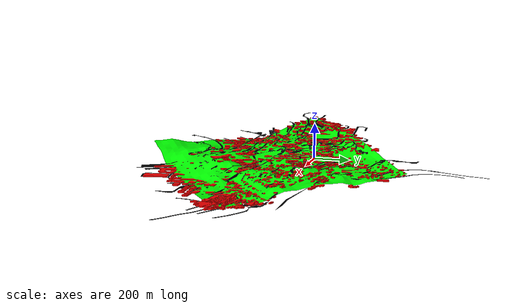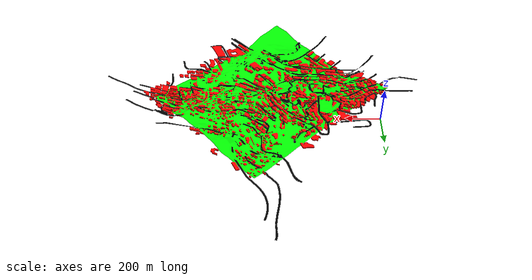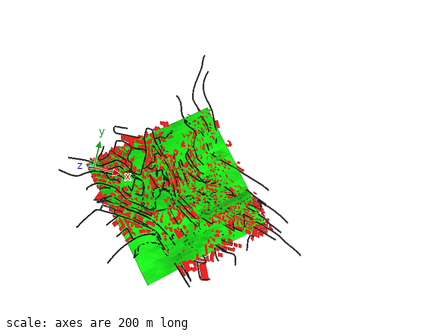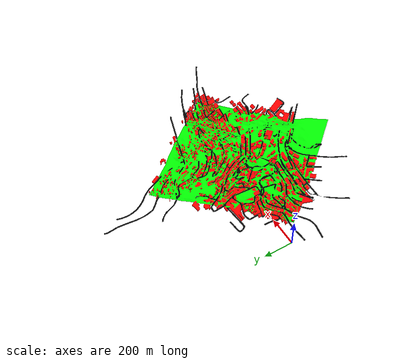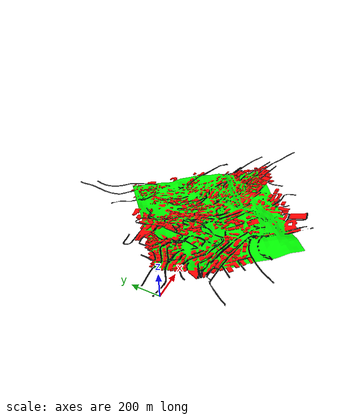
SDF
<?xml version="1.0"?>
<sdf version="1.5">
  <model name="osm_1">
    <static>true</static>
    <link name="l1">
      <collision name="c1">
        <geometry>
          <box>
            <size>0 0 0</size>
          </box>
        </geometry>
      </collision>
      <visual name="m1">
        <cast_shadows>true</cast_shadows>
        <geometry>
          <mesh>
            <uri>model://osm_1/meshes/TestFile1.dae</uri>
            <scale>1000 1000 1000</scale>
          </mesh>
        </geometry>
      </visual>
    </link>
  </model>
</sdf>
